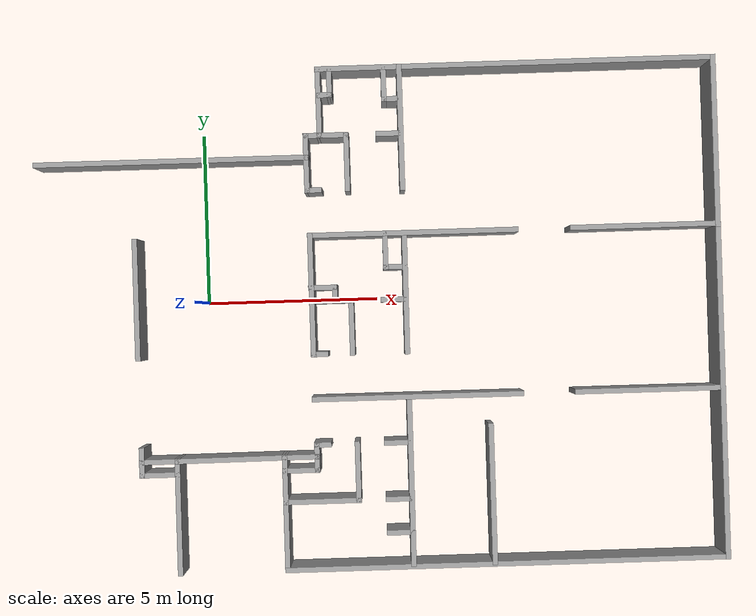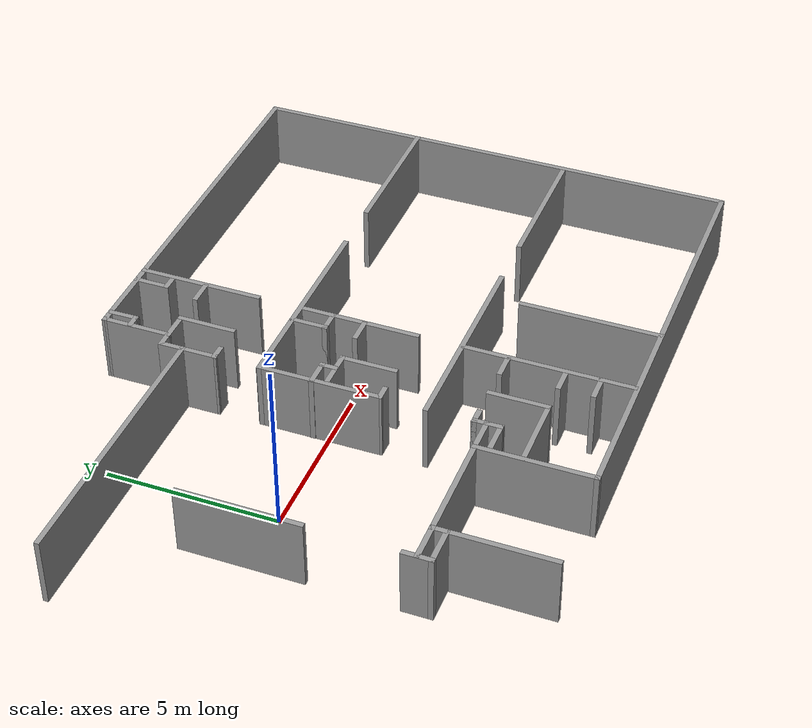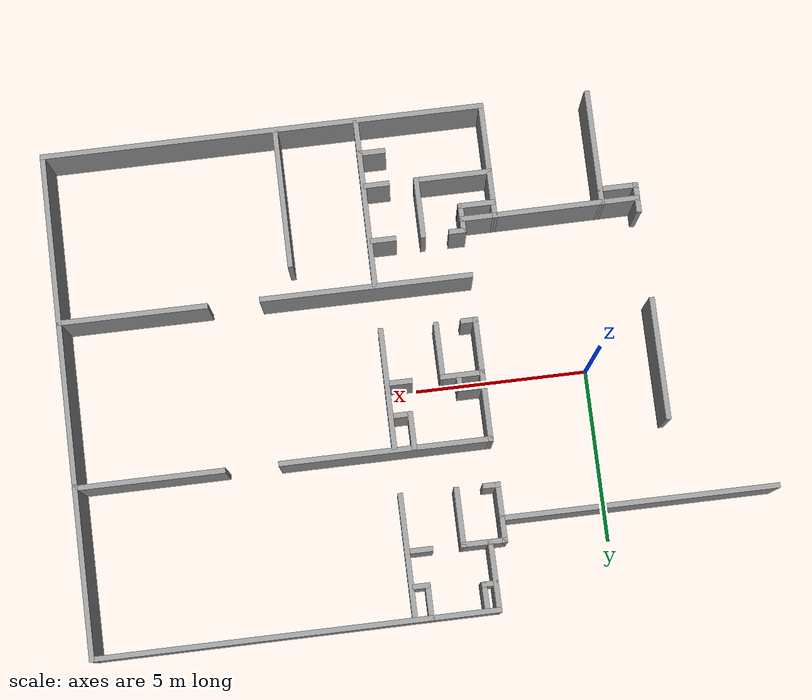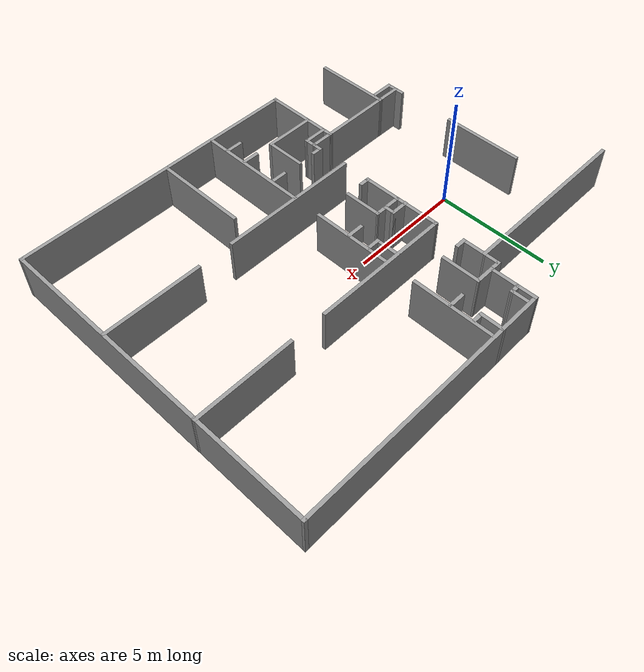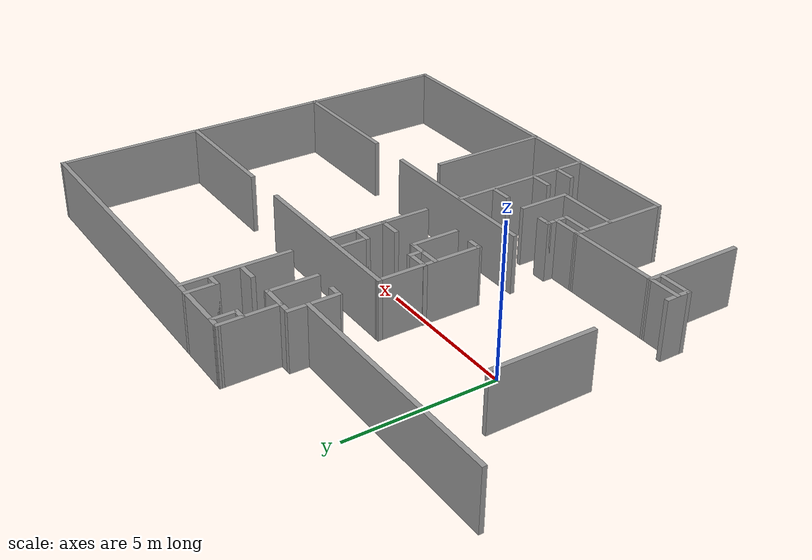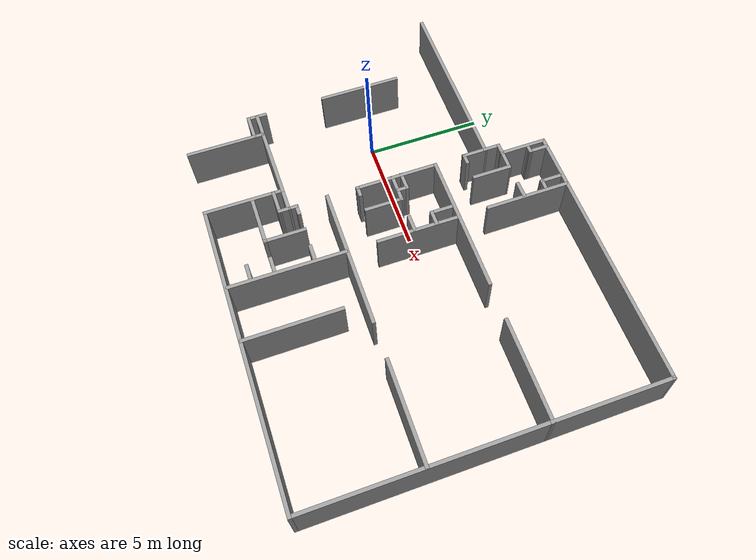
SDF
<sdf version="1.7">
 <model name="HQ">
  <pose>-0.041318 -0.56538 0 0 -0 0</pose>
  <link name="Wall_117">
   <collision name="Wall_117_Collision">
    <geometry><box><size>0.875898 0.15 2.0</size></box></geometry>
    <pose>0 0 1.25 0 -0 0</pose>
   </collision>
   <visual name="Wall_117_Visual">
    <pose>0 0 1.25 0 -0 0</pose>
    <geometry><box><size>0.875898 0.15 2.0</size></box></geometry>
    <material>
     <script><uri>file://media/materials/scripts/gazebo.material</uri><name>Gazebo/Grey</name></script>
     <ambient>1 1 1 1</ambient>
    </material>
    <meta><layer>0</layer></meta>
   </visual>
   <pose>-1.88509 -3.99966 0 0 -0 -1.5708</pose>
  </link>
  <link name="Wall_118">
   <collision name="Wall_118_Collision">
    <geometry><box><size>1.1557 0.15 2.0</size></box></geometry>
    <pose>0 0 1.25 0 -0 0</pose>
   </collision>
   <visual name="Wall_118_Visual">
    <pose>0 0 1.25 0 -0 0</pose>
    <geometry><box><size>1.1557 0.15 2.0</size></box></geometry>
    <material>
     <script><uri>file://media/materials/scripts/gazebo.material</uri><name>Gazebo/Grey</name></script>
     <ambient>1 1 1 1</ambient>
    </material>
    <meta><layer>0</layer></meta>
   </visual>
   <pose>-1.38226 -4.3626 0 0 -0 0</pose>
  </link>
  <link name="Wall_120">
   <collision name="Wall_120_Collision">
    <geometry><box><size>1.16116 0.15 2.0</size></box></geometry>
    <pose>0 0 1.25 0 -0 0</pose>
   </collision>
   <visual name="Wall_120_Visual">
    <pose>0 0 1.25 0 -0 0</pose>
    <geometry><box><size>1.16116 0.15 2.0</size></box></geometry>
    <material>
     <script><uri>file://media/materials/scripts/gazebo.material</uri><name>Gazebo/Grey</name></script>
     <ambient>1 1 1 1</ambient>
    </material>
    <meta><layer>0</layer></meta>
   </visual>
   <pose>-1.36439 -3.98262 0 0 -0 -3.13781</pose>
  </link>
  <link name="Wall_13">
   <collision name="Wall_13_Collision">
    <geometry><box><size>4.99102 0.15 2.0</size></box></geometry>
    <pose>0 0 1.25 0 -0 0</pose>
   </collision>
   <visual name="Wall_13_Visual">
    <pose>0 0 1.25 0 -0 0</pose>
    <geometry><box><size>4.99102 0.15 2.0</size></box></geometry>
    <material>
     <script><uri>file://media/materials/scripts/gazebo.material</uri><name>Gazebo/Grey</name></script>
     <ambient>1 1 1 1</ambient>
    </material>
    <meta><layer>0</layer></meta>
   </visual>
   <pose>14.9584 4.80245 0 0 -0 -1.5696</pose>
  </link>
  <link name="Wall_139">
   <collision name="Wall_139_Collision">
    <geometry><box><size>6.13288 0.15 2.0</size></box></geometry>
    <pose>0 0 1.25 0 -0 0</pose>
   </collision>
   <visual name="Wall_139_Visual">
    <pose>0 0 1.25 0 -0 0</pose>
    <geometry><box><size>6.13288 0.15 2.0</size></box></geometry>
    <material>
     <script><uri>file://media/materials/scripts/gazebo.material</uri><name>Gazebo/Grey</name></script>
     <ambient>1 1 1 1</ambient>
    </material>
    <meta><layer>0</layer></meta>
   </visual>
   <pose>6.14807 -2.32093 0 0 -0 -0.001582</pose>
  </link>
  <link name="Wall_142">
   <collision name="Wall_142_Collision">
    <geometry><box><size>4.0945 0.15 2.0</size></box></geometry>
    <pose>0 0 1.25 0 -0 0</pose>
   </collision>
   <visual name="Wall_142_Visual">
    <pose>0 0 1.25 0 -0 0</pose>
    <geometry><box><size>4.0945 0.15 2.0</size></box></geometry>
    <material>
     <script><uri>file://media/materials/scripts/gazebo.material</uri><name>Gazebo/Grey</name></script>
     <ambient>1 1 1 1</ambient>
    </material>
    <meta><layer>0</layer></meta>
   </visual>
   <pose>8.22923 -5.21005 0 0 -0 1.5708</pose>
  </link>
  <link name="Wall_144">
   <collision name="Wall_144_Collision">
    <geometry><box><size>4.91701 0.15 2.0</size></box></geometry>
    <pose>0 0 1.25 0 -0 0</pose>
   </collision>
   <visual name="Wall_144_Visual">
    <pose>0 0 1.25 0 -0 0</pose>
    <geometry><box><size>4.91701 0.15 2.0</size></box></geometry>
    <material>
     <script><uri>file://media/materials/scripts/gazebo.material</uri><name>Gazebo/Grey</name></script>
     <ambient>1 1 1 1</ambient>
    </material>
    <meta><layer>0</layer></meta>
   </visual>
   <pose>5.88898 -4.76429 0 0 -0 1.56838</pose>
  </link>
  <link name="Wall_148">
   <collision name="Wall_148_Collision">
    <geometry><box><size>0.75 0.15 2.0</size></box></geometry>
    <pose>0 0 1.25 0 -0 0</pose>
   </collision>
   <visual name="Wall_148_Visual">
    <pose>0 0 1.25 0 -0 0</pose>
    <geometry><box><size>0.75 0.15 2.0</size></box></geometry>
    <material>
     <script><uri>file://media/materials/scripts/gazebo.material</uri><name>Gazebo/Grey</name></script>
     <ambient>1 1 1 1</ambient>
    </material>
    <meta><layer>0</layer></meta>
   </visual>
   <pose>5.5052 -3.63375 0 0 -0 0</pose>
  </link>
  <link name="Wall_15">
   <collision name="Wall_15_Collision">
    <geometry><box><size>9.75 0.15 2.0</size></box></geometry>
    <pose>0 0 1.25 0 -0 0</pose>
   </collision>
   <visual name="Wall_15_Visual">
    <pose>0 0 1.25 0 -0 0</pose>
    <geometry><box><size>9.75 0.15 2.0</size></box></geometry>
    <material>
     <script><uri>file://media/materials/scripts/gazebo.material</uri><name>Gazebo/Grey</name></script>
     <ambient>1 1 1 1</ambient>
    </material>
    <meta><layer>0</layer></meta>
   </visual>
   <pose>14.9613 -2.41798 0 0 -0 -1.5708</pose>
  </link>
  <link name="Wall_154">
   <collision name="Wall_154_Collision">
    <geometry><box><size>0.751903 0.15 2.0</size></box></geometry>
    <pose>0 0 1.25 0 -0 0</pose>
   </collision>
   <visual name="Wall_154_Visual">
    <pose>0 0 1.25 0 -0 0</pose>
    <geometry><box><size>0.751903 0.15 2.0</size></box></geometry>
    <material>
     <script><uri>file://media/materials/scripts/gazebo.material</uri><name>Gazebo/Grey</name></script>
     <ambient>1 1 1 1</ambient>
    </material>
    <meta><layer>0</layer></meta>
   </visual>
   <pose>5.50425 -5.26133 0 0 -0 0.000815</pose>
  </link>
  <link name="Wall_159">
   <collision name="Wall_159_Collision">
    <geometry><box><size>0.800077 0.15 2.0</size></box></geometry>
    <pose>0 0 1.25 0 -0 0</pose>
   </collision>
   <visual name="Wall_159_Visual">
    <pose>0 0 1.25 0 -0 0</pose>
    <geometry><box><size>0.800077 0.15 2.0</size></box></geometry>
    <material>
     <script><uri>file://media/materials/scripts/gazebo.material</uri><name>Gazebo/Grey</name></script>
     <ambient>1 1 1 1</ambient>
    </material>
    <meta><layer>0</layer></meta>
   </visual>
   <pose>5.53554 -6.23041 0 0 -0 3.14159</pose>
  </link>
  <link name="Wall_163">
   <collision name="Wall_163_Collision">
    <geometry><box><size>4.32225 0.15 2.0</size></box></geometry>
    <pose>0 0 1.25 0 -0 0</pose>
   </collision>
   <visual name="Wall_163_Visual">
    <pose>0 0 1.25 0 -0 0</pose>
    <geometry><box><size>4.32225 0.15 2.0</size></box></geometry>
    <material>
     <script><uri>file://media/materials/scripts/gazebo.material</uri><name>Gazebo/Grey</name></script>
     <ambient>1 1 1 1</ambient>
    </material>
    <meta><layer>0</layer></meta>
   </visual>
   <pose>12.8544 -2.32786 0 0 -0 -0.00122</pose>
  </link>
  <link name="Wall_17">
   <collision name="Wall_17_Collision">
    <geometry><box><size>12.8702 0.15 2.0</size></box></geometry>
    <pose>0 0 1.25 0 -0 0</pose>
   </collision>
   <visual name="Wall_17_Visual">
    <pose>0 0 1.25 0 -0 0</pose>
    <geometry><box><size>12.8702 0.15 2.0</size></box></geometry>
    <material>
     <script><uri>file://media/materials/scripts/gazebo.material</uri><name>Gazebo/Grey</name></script>
     <ambient>1 1 1 1</ambient>
    </material>
    <meta><layer>0</layer></meta>
   </visual>
   <pose>8.60126 -7.2205 0 0 -0 -3.1412</pose>
  </link>
  <link name="Wall_171">
   <collision name="Wall_171_Collision">
    <geometry><box><size>3.58693 0.15 2.0</size></box></geometry>
    <pose>0 0 1.25 0 -0 0</pose>
   </collision>
   <visual name="Wall_171_Visual">
    <pose>0 0 1.25 0 -0 0</pose>
    <geometry><box><size>3.58693 0.15 2.0</size></box></geometry>
    <material>
     <script><uri>file://media/materials/scripts/gazebo.material</uri><name>Gazebo/Grey</name></script>
     <ambient>1 1 1 1</ambient>
    </material>
    <meta><layer>0</layer></meta>
   </visual>
   <pose>3.16808 0.700941 0 0 -0 1.57282</pose>
  </link>
  <link name="Wall_177">
   <collision name="Wall_177_Collision">
    <geometry><box><size>6.10576 0.15 2.0</size></box></geometry>
    <pose>0 0 1.25 0 -0 0</pose>
   </collision>
   <visual name="Wall_177_Visual">
    <pose>0 0 1.25 0 -0 0</pose>
    <geometry><box><size>6.10576 0.15 2.0</size></box></geometry>
    <material>
     <script><uri>file://media/materials/scripts/gazebo.material</uri><name>Gazebo/Grey</name></script>
     <ambient>1 1 1 1</ambient>
    </material>
    <meta><layer>0</layer></meta>
   </visual>
   <pose>6.14231 2.4172 0 0 -0 -0.00074</pose>
  </link>
  <link name="Wall_18">
   <collision name="Wall_18_Collision">
    <geometry><box><size>3.40471 0.15 2.0</size></box></geometry>
    <pose>0 0 1.25 0 -0 0</pose>
   </collision>
   <visual name="Wall_18_Visual">
    <pose>0 0 1.25 0 -0 0</pose>
    <geometry><box><size>3.40471 0.15 2.0</size></box></geometry>
    <material>
     <script><uri>file://media/materials/scripts/gazebo.material</uri><name>Gazebo/Grey</name></script>
     <ambient>1 1 1 1</ambient>
    </material>
    <meta><layer>0</layer></meta>
   </visual>
   <pose>2.24118 -5.59568 0 0 -0 1.5708</pose>
  </link>
  <link name="Wall_182">
   <collision name="Wall_182_Collision">
    <geometry><box><size>4.34 0.15 2.0</size></box></geometry>
    <pose>0 0 1.25 0 -0 0</pose>
   </collision>
   <visual name="Wall_182_Visual">
    <pose>0 0 1.25 0 -0 0</pose>
    <geometry><box><size>4.34 0.15 2.0</size></box></geometry>
    <material>
     <script><uri>file://media/materials/scripts/gazebo.material</uri><name>Gazebo/Grey</name></script>
     <ambient>1 1 1 1</ambient>
    </material>
    <meta><layer>0</layer></meta>
   </visual>
   <pose>12.865 2.415 0 0 -0 0</pose>
  </link>
  <link name="Wall_187">
   <collision name="Wall_187_Collision">
    <geometry><box><size>3.48674 0.15 2.0</size></box></geometry>
    <pose>0 0 1.25 0 -0 0</pose>
   </collision>
   <visual name="Wall_187_Visual">
    <pose>0 0 1.25 0 -0 0</pose>
    <geometry><box><size>3.48674 0.15 2.0</size></box></geometry>
    <material>
     <script><uri>file://media/materials/scripts/gazebo.material</uri><name>Gazebo/Grey</name></script>
     <ambient>1 1 1 1</ambient>
    </material>
    <meta><layer>0</layer></meta>
   </visual>
   <pose>5.89015 0.650841 0 0 -0 1.56805</pose>
  </link>
  <link name="Wall_19">
   <collision name="Wall_19_Collision">
    <geometry><box><size>1.09306 0.15 2.0</size></box></geometry>
    <pose>0 0 1.25 0 -0 0</pose>
   </collision>
   <visual name="Wall_19_Visual">
    <pose>0 0 1.25 0 -0 0</pose>
    <geometry><box><size>1.09306 0.15 2.0</size></box></geometry>
    <material>
     <script><uri>file://media/materials/scripts/gazebo.material</uri><name>Gazebo/Grey</name></script>
     <ambient>1 1 1 1</ambient>
    </material>
    <meta><layer>0</layer></meta>
   </visual>
   <pose>2.71265 -3.96834 0 0 -0 0</pose>
  </link>
  <link name="Wall_192">
   <collision name="Wall_192_Collision">
    <geometry><box><size>0.5 0.15 2.0</size></box></geometry>
    <pose>0 0 1.25 0 -0 0</pose>
   </collision>
   <visual name="Wall_192_Visual">
    <pose>0 0 1.25 0 -0 0</pose>
    <geometry><box><size>0.5 0.15 2.0</size></box></geometry>
    <material>
     <script><uri>file://media/materials/scripts/gazebo.material</uri><name>Gazebo/Grey</name></script>
     <ambient>1 1 1 1</ambient>
    </material>
    <meta><layer>0</layer></meta>
   </visual>
   <pose>3.34656 -1.01752 0 0 -0 0</pose>
  </link>
  <link name="Wall_198">
   <collision name="Wall_198_Collision">
    <geometry><box><size>1.2655 0.15 2.0</size></box></geometry>
    <pose>0 0 1.25 0 -0 0</pose>
   </collision>
   <visual name="Wall_198_Visual">
    <pose>0 0 1.25 0 -0 0</pose>
    <geometry><box><size>1.2655 0.15 2.0</size></box></geometry>
    <material>
     <script><uri>file://media/materials/scripts/gazebo.material</uri><name>Gazebo/Grey</name></script>
     <ambient>1 1 1 1</ambient>
    </material>
    <meta><layer>0</layer></meta>
   </visual>
   <pose>3.74081 0.511977 0 0 -0 0</pose>
  </link>
  <link name="Wall_20">
   <collision name="Wall_20_Collision">
    <geometry><box><size>0.484593 0.15 2.0</size></box></geometry>
    <pose>0 0 1.25 0 -0 0</pose>
   </collision>
   <visual name="Wall_20_Visual">
    <pose>0 0 1.25 0 -0 0</pose>
    <geometry><box><size>0.484593 0.15 2.0</size></box></geometry>
    <material>
     <script><uri>file://media/materials/scripts/gazebo.material</uri><name>Gazebo/Grey</name></script>
     <ambient>1 1 1 1</ambient>
    </material>
    <meta><layer>0</layer></meta>
   </visual>
   <pose>3.18412 -3.80105 0 0 -0 1.5708</pose>
  </link>
  <link name="Wall_202">
   <collision name="Wall_202_Collision">
    <geometry><box><size>1.66652 0.15 2.0</size></box></geometry>
    <pose>0 0 1.25 0 -0 0</pose>
   </collision>
   <visual name="Wall_202_Visual">
    <pose>0 0 1.25 0 -0 0</pose>
    <geometry><box><size>1.66652 0.15 2.0</size></box></geometry>
    <material>
     <script><uri>file://media/materials/scripts/gazebo.material</uri><name>Gazebo/Grey</name></script>
     <ambient>1 1 1 1</ambient>
    </material>
    <meta><layer>0</layer></meta>
   </visual>
   <pose>4.29995 -0.246283 0 0 -0 -1.56896</pose>
  </link>
  <link name="Wall_204">
   <collision name="Wall_204_Collision">
    <geometry><box><size>0.836128 0.15 2.0</size></box></geometry>
    <pose>0 0 1.25 0 -0 0</pose>
   </collision>
   <visual name="Wall_204_Visual">
    <pose>0 0 1.25 0 -0 0</pose>
    <geometry><box><size>0.836128 0.15 2.0</size></box></geometry>
    <material>
     <script><uri>file://media/materials/scripts/gazebo.material</uri><name>Gazebo/Grey</name></script>
     <ambient>1 1 1 1</ambient>
    </material>
    <meta><layer>0</layer></meta>
   </visual>
   <pose>3.49517 0.905114 0 0 -0 0</pose>
  </link>
  <link name="Wall_205">
   <collision name="Wall_205_Collision">
    <geometry><box><size>0.52164 0.15 2.0</size></box></geometry>
    <pose>0 0 1.25 0 -0 0</pose>
   </collision>
   <visual name="Wall_205_Visual">
    <pose>0 0 1.25 0 -0 0</pose>
    <geometry><box><size>0.52164 0.15 2.0</size></box></geometry>
    <material>
     <script><uri>file://media/materials/scripts/gazebo.material</uri><name>Gazebo/Grey</name></script>
     <ambient>1 1 1 1</ambient>
    </material>
    <meta><layer>0</layer></meta>
   </visual>
   <pose>3.83822 0.719294 0 0 -0 -1.5708</pose>
  </link>
  <link name="Wall_209">
   <collision name="Wall_209_Collision">
    <geometry><box><size>0.761883 0.15 2.0</size></box></geometry>
    <pose>0 0 1.25 0 -0 0</pose>
   </collision>
   <visual name="Wall_209_Visual">
    <pose>0 0 1.25 0 -0 0</pose>
    <geometry><box><size>0.761883 0.15 2.0</size></box></geometry>
    <material>
     <script><uri>file://media/materials/scripts/gazebo.material</uri><name>Gazebo/Grey</name></script>
     <ambient>1 1 1 1</ambient>
    </material>
    <meta><layer>0</layer></meta>
   </visual>
   <pose>5.5449 0.510604 0 0 -0 0</pose>
  </link>
  <link name="Wall_213">
   <collision name="Wall_213_Collision">
    <geometry><box><size>3.64548 0.15 2.0</size></box></geometry>
    <pose>0 0 1.25 0 -0 0</pose>
   </collision>
   <visual name="Wall_213_Visual">
    <pose>0 0 1.25 0 -0 0</pose>
    <geometry><box><size>3.64548 0.15 2.0</size></box></geometry>
    <material>
     <script><uri>file://media/materials/scripts/gazebo.material</uri><name>Gazebo/Grey</name></script>
     <ambient>1 1 1 1</ambient>
    </material>
    <meta><layer>0</layer></meta>
   </visual>
   <pose>5.88933 5.46612 0 0 -0 1.57131</pose>
  </link>
  <link name="Wall_217">
   <collision name="Wall_217_Collision">
    <geometry><box><size>1.10451 0.15 2.0</size></box></geometry>
    <pose>0 0 1.25 0 -0 0</pose>
   </collision>
   <visual name="Wall_217_Visual">
    <pose>0 0 1.25 0 -0 0</pose>
    <geometry><box><size>1.10451 0.15 2.0</size></box></geometry>
    <material>
     <script><uri>file://media/materials/scripts/gazebo.material</uri><name>Gazebo/Grey</name></script>
     <ambient>1 1 1 1</ambient>
    </material>
    <meta><layer>0</layer></meta>
   </visual>
   <pose>3.12789 4.20563 0 0 -0 -1.56588</pose>
  </link>
  <link name="Wall_22">
   <collision name="Wall_22_Collision">
    <geometry><box><size>1.77741 0.15 2.0</size></box></geometry>
    <pose>0 0 1.25 0 -0 0</pose>
   </collision>
   <visual name="Wall_22_Visual">
    <pose>0 0 1.25 0 -0 0</pose>
    <geometry><box><size>1.77741 0.15 2.0</size></box></geometry>
    <material>
     <script><uri>file://media/materials/scripts/gazebo.material</uri><name>Gazebo/Grey</name></script>
     <ambient>1 1 1 1</ambient>
    </material>
    <meta><layer>0</layer></meta>
   </visual>
   <pose>4.3552 -4.44742 0 0 -0 -1.5708</pose>
  </link>
  <link name="Wall_220">
   <collision name="Wall_220_Collision">
    <geometry><box><size>0.5 0.15 2.0</size></box></geometry>
    <pose>0 0 1.25 0 -0 0</pose>
   </collision>
   <visual name="Wall_220_Visual">
    <pose>0 0 1.25 0 -0 0</pose>
    <geometry><box><size>0.5 0.15 2.0</size></box></geometry>
    <material>
     <script><uri>file://media/materials/scripts/gazebo.material</uri><name>Gazebo/Grey</name></script>
     <ambient>1 1 1 1</ambient>
    </material>
    <meta><layer>0</layer></meta>
   </visual>
   <pose>3.30523 3.72838 0 0 -0 0</pose>
  </link>
  <link name="Wall_222">
   <collision name="Wall_222_Collision">
    <geometry><box><size>1.71003 0.15 2.0</size></box></geometry>
    <pose>0 0 1.25 0 -0 0</pose>
   </collision>
   <visual name="Wall_222_Visual">
    <pose>0 0 1.25 0 -0 0</pose>
    <geometry><box><size>1.71003 0.15 2.0</size></box></geometry>
    <material>
     <script><uri>file://media/materials/scripts/gazebo.material</uri><name>Gazebo/Grey</name></script>
     <ambient>1 1 1 1</ambient>
    </material>
    <meta><layer>0</layer></meta>
   </visual>
   <pose>4.30023 4.51838 0 0 -0 1.5708</pose>
  </link>
  <link name="Wall_224">
   <collision name="Wall_224_Collision">
    <geometry><box><size>0.914701 0.15 2.0</size></box></geometry>
    <pose>0 0 1.25 0 -0 0</pose>
   </collision>
   <visual name="Wall_224_Visual">
    <pose>0 0 1.25 0 -0 0</pose>
    <geometry><box><size>0.914701 0.15 2.0</size></box></geometry>
    <material>
     <script><uri>file://media/materials/scripts/gazebo.material</uri><name>Gazebo/Grey</name></script>
     <ambient>1 1 1 1</ambient>
    </material>
    <meta><layer>0</layer></meta>
   </visual>
   <pose>3.91789 5.30063 0 0 -0 -0.005876</pose>
  </link>
  <link name="Wall_23">
   <collision name="Wall_23_Collision">
    <geometry><box><size>2.25 0.15 2.0</size></box></geometry>
    <pose>0 0 1.25 0 -0 0</pose>
   </collision>
   <visual name="Wall_23_Visual">
    <pose>0 0 1.25 0 -0 0</pose>
    <geometry><box><size>2.25 0.15 2.0</size></box></geometry>
    <material>
     <script><uri>file://media/materials/scripts/gazebo.material</uri><name>Gazebo/Grey</name></script>
     <ambient>1 1 1 1</ambient>
    </material>
    <meta><layer>0</layer></meta>
   </visual>
   <pose>3.3052 -5.26109 0 0 -0 3.14159</pose>
  </link>
  <link name="Wall_230">
   <collision name="Wall_230_Collision">
    <geometry><box><size>0.75 0.15 2.0</size></box></geometry>
    <pose>0 0 1.25 0 -0 0</pose>
   </collision>
   <visual name="Wall_230_Visual">
    <pose>0 0 1.25 0 -0 0</pose>
    <geometry><box><size>0.75 0.15 2.0</size></box></geometry>
    <material>
     <script><uri>file://media/materials/scripts/gazebo.material</uri><name>Gazebo/Grey</name></script>
     <ambient>1 1 1 1</ambient>
    </material>
    <meta><layer>0</layer></meta>
   </visual>
   <pose>5.53023 5.29838 0 0 -0 0</pose>
  </link>
  <link name="Wall_232">
   <collision name="Wall_232_Collision">
    <geometry><box><size>1.07 0.15 2.0</size></box></geometry>
    <pose>0 0 1.25 0 -0 0</pose>
   </collision>
   <visual name="Wall_232_Visual">
    <pose>0 0 1.25 0 -0 0</pose>
    <geometry><box><size>1.07 0.15 2.0</size></box></geometry>
    <material>
     <script><uri>file://media/materials/scripts/gazebo.material</uri><name>Gazebo/Grey</name></script>
     <ambient>1 1 1 1</ambient>
    </material>
    <meta><layer>0</layer></meta>
   </visual>
   <pose>5.43023 6.75838 0 0 -0 -1.5708</pose>
  </link>
  <link name="Wall_233">
   <collision name="Wall_233_Collision">
    <geometry><box><size>0.5 0.15 2.0</size></box></geometry>
    <pose>0 0 1.25 0 -0 0</pose>
   </collision>
   <visual name="Wall_233_Visual">
    <pose>0 0 1.25 0 -0 0</pose>
    <geometry><box><size>0.5 0.15 2.0</size></box></geometry>
    <material>
     <script><uri>file://media/materials/scripts/gazebo.material</uri><name>Gazebo/Grey</name></script>
     <ambient>1 1 1 1</ambient>
    </material>
    <meta><layer>0</layer></meta>
   </visual>
   <pose>5.60523 6.29838 0 0 -0 0</pose>
  </link>
  <link name="Wall_235">
   <collision name="Wall_235_Collision">
    <geometry><box><size>0.5 0.15 2.0</size></box></geometry>
    <pose>0 0 1.25 0 -0 0</pose>
   </collision>
   <visual name="Wall_235_Visual">
    <pose>0 0 1.25 0 -0 0</pose>
    <geometry><box><size>0.5 0.15 2.0</size></box></geometry>
    <material>
     <script><uri>file://media/materials/scripts/gazebo.material</uri><name>Gazebo/Grey</name></script>
     <ambient>1 1 1 1</ambient>
    </material>
    <meta><layer>0</layer></meta>
   </visual>
   <pose>3.35912 -3.63375 0 0 -0 0</pose>
  </link>
  <link name="Wall_25">
   <collision name="Wall_25_Collision">
    <geometry><box><size>3.25 0.15 2.0</size></box></geometry>
    <pose>0 0 1.25 0 -0 0</pose>
   </collision>
   <visual name="Wall_25_Visual">
    <pose>0 0 1.25 0 -0 0</pose>
    <geometry><box><size>3.25 0.15 2.0</size></box></geometry>
    <material>
     <script><uri>file://media/materials/scripts/gazebo.material</uri><name>Gazebo/Grey</name></script>
     <ambient>1 1 1 1</ambient>
    </material>
    <meta><layer>0</layer></meta>
   </visual>
   <pose>0.691182 -3.97576 0 0 -0 -3.13681</pose>
  </link>
  <link name="Wall_26">
   <collision name="Wall_26_Collision">
    <geometry><box><size>3.38946 0.15 2.0</size></box></geometry>
    <pose>0 0 1.25 0 -0 0</pose>
   </collision>
   <visual name="Wall_26_Visual">
    <pose>0 0 1.25 0 -0 0</pose>
    <geometry><box><size>3.38946 0.15 2.0</size></box></geometry>
    <material>
     <script><uri>file://media/materials/scripts/gazebo.material</uri><name>Gazebo/Grey</name></script>
     <ambient>1 1 1 1</ambient>
    </material>
    <meta><layer>0</layer></meta>
   </visual>
   <pose>-0.860111 -5.60044 0 0 -0 -1.57159</pose>
  </link>
  <link name="Wall_260">
   <collision name="Wall_260_Collision">
    <geometry><box><size>0.453029 0.15 2.0</size></box></geometry>
    <pose>0 0 1.25 0 -0 0</pose>
   </collision>
   <visual name="Wall_260_Visual">
    <pose>0 0 1.25 0 -0 0</pose>
    <geometry><box><size>0.453029 0.15 2.0</size></box></geometry>
    <material>
     <script><uri>file://media/materials/scripts/gazebo.material</uri><name>Gazebo/Grey</name></script>
     <ambient>1 1 1 1</ambient>
    </material>
    <meta><layer>0</layer></meta>
   </visual>
   <pose>3.70877 6.46205 0 0 -0 0</pose>
  </link>
  <link name="Wall_261">
   <collision name="Wall_261_Collision">
    <geometry><box><size>0.876329 0.15 2.0</size></box></geometry>
    <pose>0 0 1.25 0 -0 0</pose>
   </collision>
   <visual name="Wall_261_Visual">
    <pose>0 0 1.25 0 -0 0</pose>
    <geometry><box><size>0.876329 0.15 2.0</size></box></geometry>
    <material>
     <script><uri>file://media/materials/scripts/gazebo.material</uri><name>Gazebo/Grey</name></script>
     <ambient>1 1 1 1</ambient>
    </material>
    <meta><layer>0</layer></meta>
   </visual>
   <pose>3.85743 6.82511 0 0 -0 1.57867</pose>
  </link>
  <link name="Wall_265">
   <collision name="Wall_265_Collision">
    <geometry><box><size>0.534494 0.15 2.0</size></box></geometry>
    <pose>0 0 1.25 0 -0 0</pose>
   </collision>
   <visual name="Wall_265_Visual">
    <pose>0 0 1.25 0 -0 0</pose>
    <geometry><box><size>0.534494 0.15 2.0</size></box></geometry>
    <material>
     <script><uri>file://media/materials/scripts/gazebo.material</uri><name>Gazebo/Grey</name></script>
     <ambient>1 1 1 1</ambient>
    </material>
    <meta><layer>0</layer></meta>
   </visual>
   <pose>3.18508 -4.16059 0 0 -0 -1.56585</pose>
  </link>
  <link name="Wall_267">
   <collision name="Wall_267_Collision">
    <geometry><box><size>1.07773 0.15 2.0</size></box></geometry>
    <pose>0 0 1.25 0 -0 0</pose>
   </collision>
   <visual name="Wall_267_Visual">
    <pose>0 0 1.25 0 -0 0</pose>
    <geometry><box><size>1.07773 0.15 2.0</size></box></geometry>
    <material>
     <script><uri>file://media/materials/scripts/gazebo.material</uri><name>Gazebo/Grey</name></script>
     <ambient>1 1 1 1</ambient>
    </material>
    <meta><layer>0</layer></meta>
   </visual>
   <pose>2.72216 -4.35283 0 0 -0 3.14159</pose>
  </link>
  <link name="Wall_269">
   <collision name="Wall_269_Collision">
    <geometry><box><size>1.09913 0.15 2.0</size></box></geometry>
    <pose>0 0 1.25 0 -0 0</pose>
   </collision>
   <visual name="Wall_269_Visual">
    <pose>0 0 1.25 0 -0 0</pose>
    <geometry><box><size>1.09913 0.15 2.0</size></box></geometry>
    <material>
     <script><uri>file://media/materials/scripts/gazebo.material</uri><name>Gazebo/Grey</name></script>
     <ambient>1 1 1 1</ambient>
    </material>
    <meta><layer>0</layer></meta>
   </visual>
   <pose>5.33585 1.92159 0 0 -0 -1.5708</pose>
  </link>
  <link name="Wall_270">
   <collision name="Wall_270_Collision">
    <geometry><box><size>0.698883 0.15 2.0</size></box></geometry>
    <pose>0 0 1.25 0 -0 0</pose>
   </collision>
   <visual name="Wall_270_Visual">
    <pose>0 0 1.25 0 -0 0</pose>
    <geometry><box><size>0.698883 0.15 2.0</size></box></geometry>
    <material>
     <script><uri>file://media/materials/scripts/gazebo.material</uri><name>Gazebo/Grey</name></script>
     <ambient>1 1 1 1</ambient>
    </material>
    <meta><layer>0</layer></meta>
   </visual>
   <pose>5.61029 1.44704 0 0 -0 0</pose>
  </link>
  <link name="Wall_4">
   <collision name="Wall_4_Collision">
    <geometry><box><size>7.96001 0.15 2.0</size></box></geometry>
    <pose>0 0 1.25 0 -0 0</pose>
   </collision>
   <visual name="Wall_4_Visual">
    <pose>0 0 1.25 0 -0 0</pose>
    <geometry><box><size>7.96001 0.15 2.0</size></box></geometry>
    <material>
     <script><uri>file://media/materials/scripts/gazebo.material</uri><name>Gazebo/Grey</name></script>
     <ambient>1 1 1 1</ambient>
    </material>
    <meta><layer>0</layer></meta>
   </visual>
   <pose>-0.779458 4.68787 0 0 -0 -0.00128</pose>
  </link>
  <link name="Wall_45">
   <collision name="Wall_45_Collision">
    <geometry><box><size>3.53478 0.15 2.0</size></box></geometry>
    <pose>0 0 1.25 0 -0 0</pose>
   </collision>
   <visual name="Wall_45_Visual">
    <pose>0 0 1.25 0 -0 0</pose>
    <geometry><box><size>3.53478 0.15 2.0</size></box></geometry>
    <material>
     <script><uri>file://media/materials/scripts/gazebo.material</uri><name>Gazebo/Grey</name></script>
     <ambient>1 1 1 1</ambient>
    </material>
    <meta><layer>0</layer></meta>
   </visual>
   <pose>-1.9023 0.710551 0 0 -0 -1.5708</pose>
  </link>
  <link name="Wall_6">
   <collision name="Wall_6_Collision">
    <geometry><box><size>0.77 0.15 2.0</size></box></geometry>
    <pose>0 0 1.25 0 -0 0</pose>
   </collision>
   <visual name="Wall_6_Visual">
    <pose>0 0 1.25 0 -0 0</pose>
    <geometry><box><size>0.77 0.15 2.0</size></box></geometry>
    <material>
     <script><uri>file://media/materials/scripts/gazebo.material</uri><name>Gazebo/Grey</name></script>
     <ambient>1 1 1 1</ambient>
    </material>
    <meta><layer>0</layer></meta>
   </visual>
   <pose>3.12554 4.99287 0 0 -0 1.5708</pose>
  </link>
  <link name="Wall_7">
   <collision name="Wall_7_Collision">
    <geometry><box><size>0.56 0.15 2.0</size></box></geometry>
    <pose>0 0 1.25 0 -0 0</pose>
   </collision>
   <visual name="Wall_7_Visual">
    <pose>0 0 1.25 0 -0 0</pose>
    <geometry><box><size>0.56 0.15 2.0</size></box></geometry>
    <material>
     <script><uri>file://media/materials/scripts/gazebo.material</uri><name>Gazebo/Grey</name></script>
     <ambient>1 1 1 1</ambient>
    </material>
    <meta><layer>0</layer></meta>
   </visual>
   <pose>3.33054 5.30287 0 0 -0 0</pose>
  </link>
  <link name="Wall_8">
   <collision name="Wall_8_Collision">
    <geometry><box><size>2.06393 0.15 2.0</size></box></geometry>
    <pose>0 0 1.25 0 -0 0</pose>
   </collision>
   <visual name="Wall_8_Visual">
    <pose>0 0 1.25 0 -0 0</pose>
    <geometry><box><size>2.06393 0.15 2.0</size></box></geometry>
    <material>
     <script><uri>file://media/materials/scripts/gazebo.material</uri><name>Gazebo/Grey</name></script>
     <ambient>1 1 1 1</ambient>
    </material>
    <meta><layer>0</layer></meta>
   </visual>
   <pose>3.53058 6.25984 0 0 -0 1.57598</pose>
  </link>
  <link name="Wall_9">
   <collision name="Wall_9_Collision">
    <geometry><box><size>11.5799 0.15 2.0</size></box></geometry>
    <pose>0 0 1.25 0 -0 0</pose>
   </collision>
   <visual name="Wall_9_Visual">
    <pose>0 0 1.25 0 -0 0</pose>
    <geometry><box><size>11.5799 0.15 2.0</size></box></geometry>
    <material>
     <script><uri>file://media/materials/scripts/gazebo.material</uri><name>Gazebo/Grey</name></script>
     <ambient>1 1 1 1</ambient>
    </material>
    <meta><layer>0</layer></meta>
   </visual>
   <pose>9.24058 7.21984 0 0 -0 0.000531</pose>
  </link>
  <static>1</static>
 </model>
</sdf>
